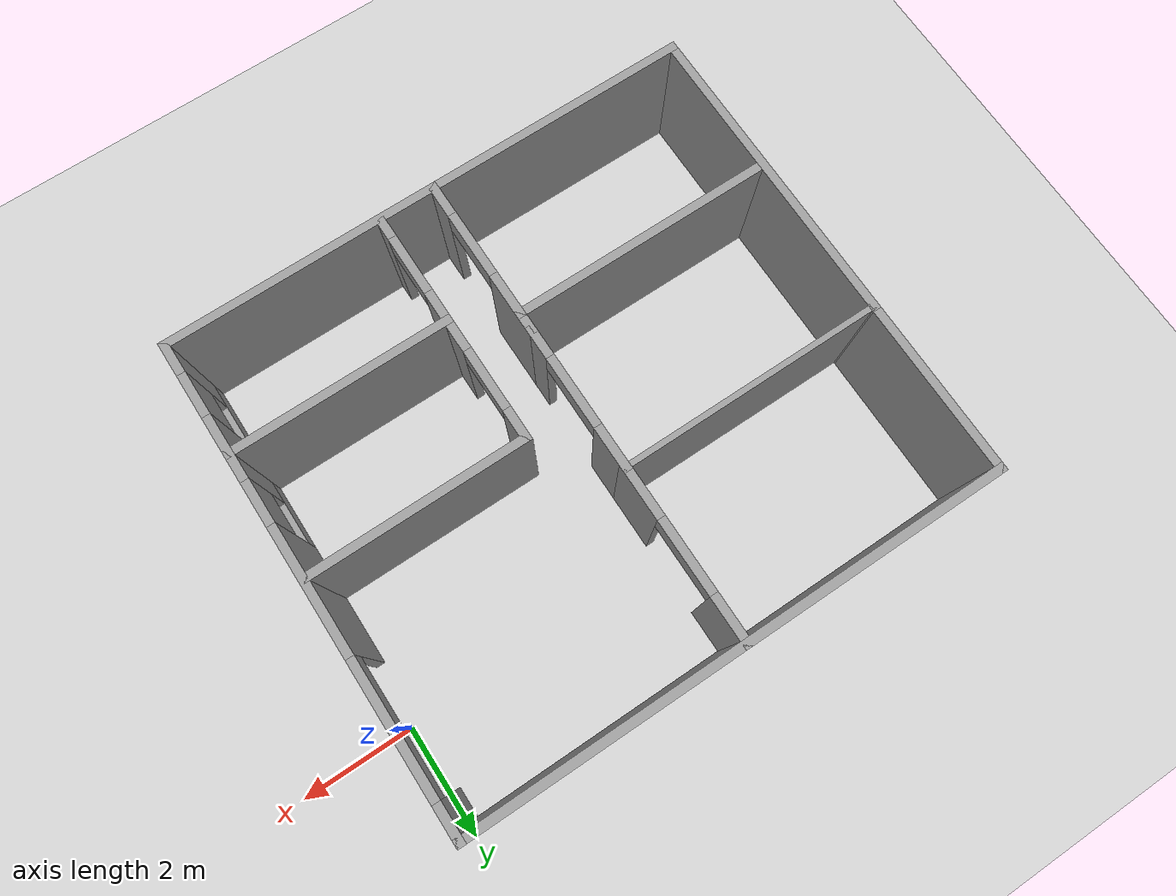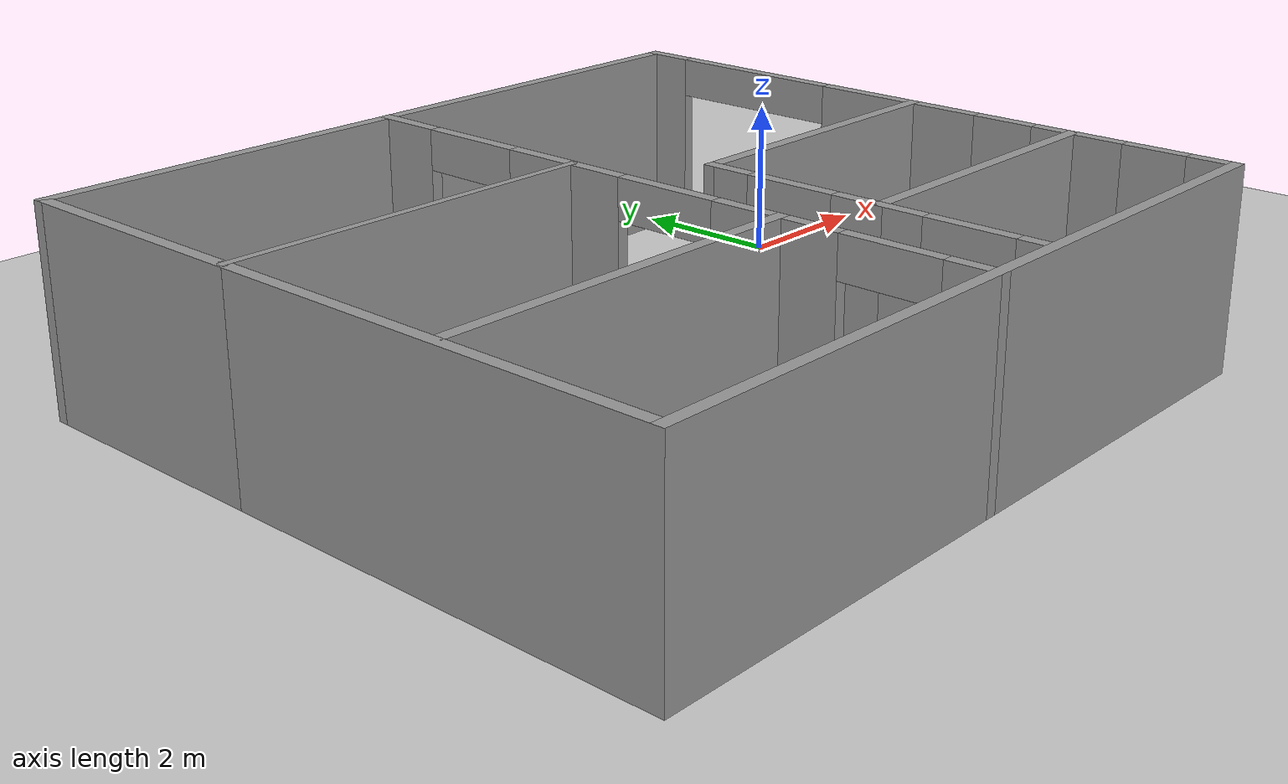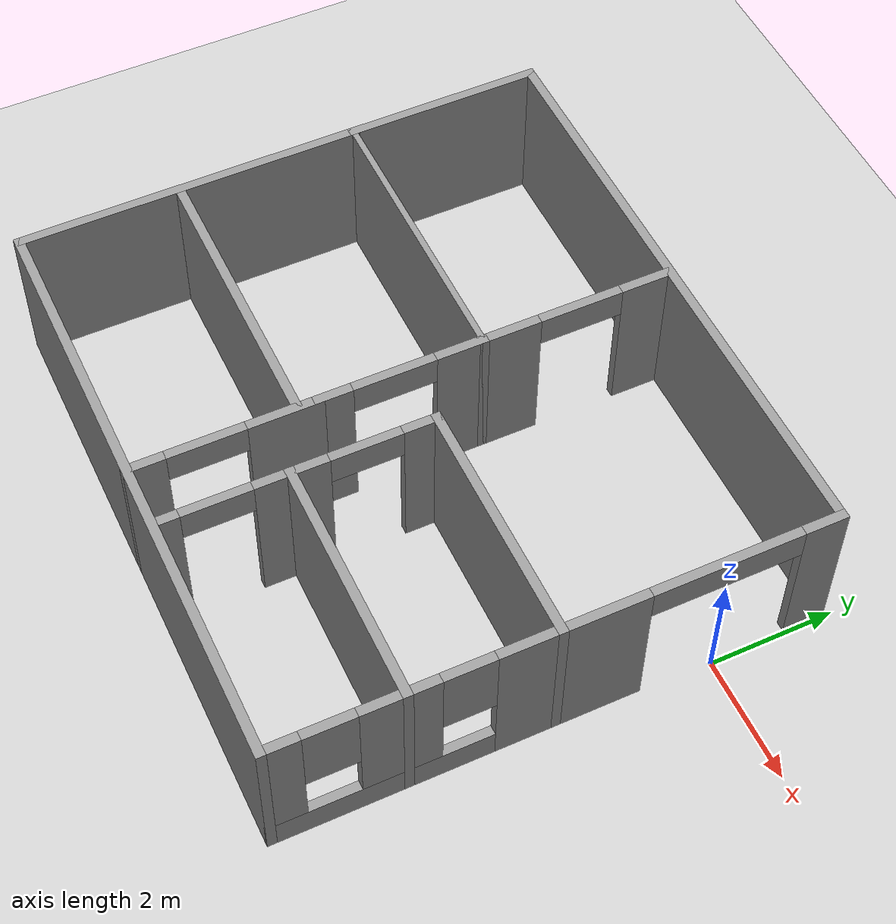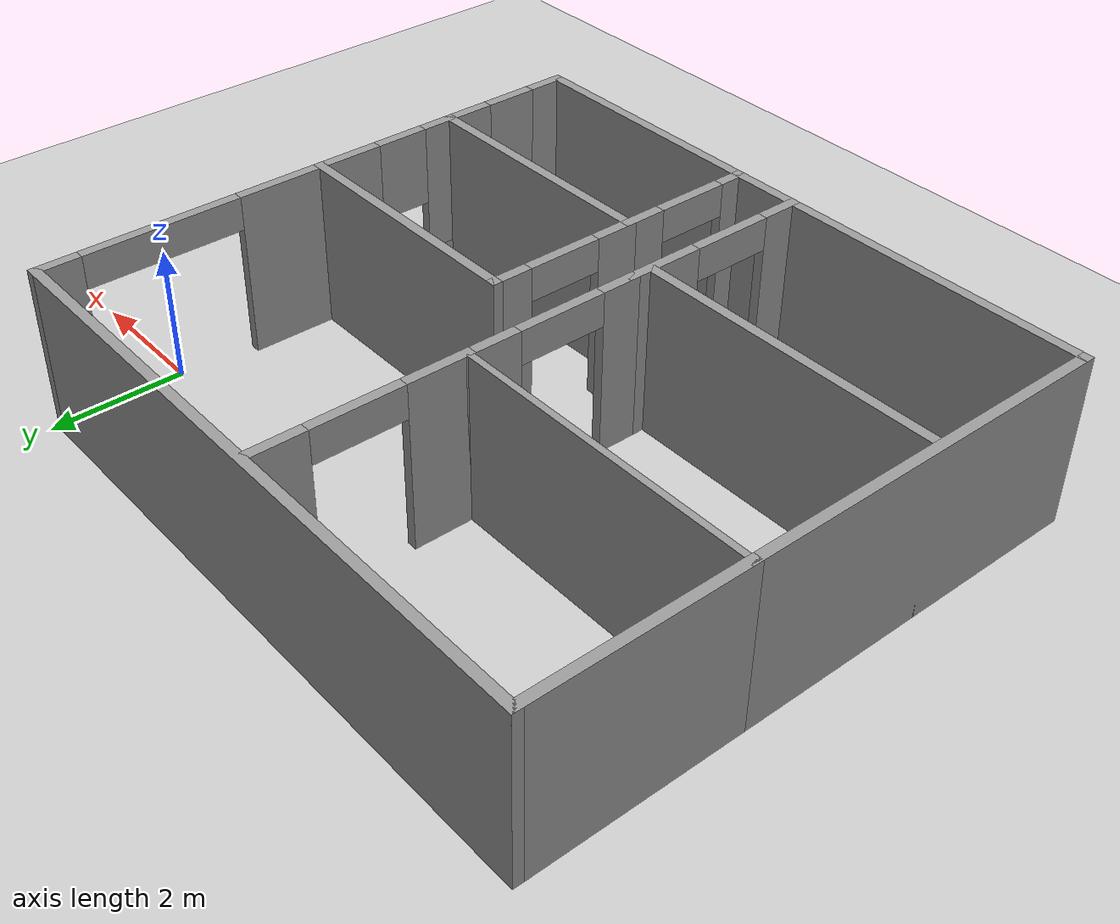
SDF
<sdf version="1.6">
 <world name="default">
  <model name="ground_plane">
   <static>1</static>
   <link name="link">
    <collision name="collision">
     <geometry><plane><normal>0 0 1</normal><size>100 100</size></plane></geometry>
     <surface>
      <contact><collide_bitmask>65535</collide_bitmask></contact>
      <friction><ode><mu>100</mu><mu2>50</mu2></ode></friction>
     </surface>
    </collision>
    <visual name="visual">
     <cast_shadows>0</cast_shadows>
     <geometry><plane><normal>0 0 1</normal><size>100 100</size></plane></geometry>
     <material>
      <script><uri>file://media/materials/scripts/gazebo.material</uri><name>Gazebo/Grey</name></script>
     </material>
    </visual>
   </link>
  </model>
  <model name="wall_real">
   <pose>-4.86138 -2.47863 0 0 -0 0</pose>
   <link name="Wall_0">
    <collision name="Wall_0_Collision">
     <geometry><box><size>3.25 0.15 2.5</size></box></geometry>
     <pose>0 0 1.25 0 -0 0</pose>
    </collision>
    <visual name="Wall_0_Visual">
     <pose>0 0 1.25 0 -0 0</pose>
     <geometry><box><size>3.25 0.15 2.5</size></box></geometry>
     <material>
      <script><uri>file://media/materials/scripts/gazebo.material</uri><name>Gazebo/Grey</name></script>
      <ambient>1 1 1 1</ambient>
     </material>
     <meta><layer>0</layer></meta>
    </visual>
    <pose>-4.75 2.75 0 0 -0 -1.5708</pose>
   </link>
   <link name="Wall_11">
    <collision name="Wall_11_Collision">
     <geometry><box><size>4 0.15 2.5</size></box></geometry>
     <pose>0 0 1.25 0 -0 0</pose>
    </collision>
    <visual name="Wall_11_Visual">
     <pose>0 0 1.25 0 -0 0</pose>
     <geometry><box><size>4 0.15 2.5</size></box></geometry>
     <material>
      <script><uri>file://media/materials/scripts/gazebo.material</uri><name>Gazebo/Grey</name></script>
      <ambient>1 1 1 1</ambient>
     </material>
     <meta><layer>0</layer></meta>
    </visual>
    <pose>2.825 -2.25 0 0 -0 3.14159</pose>
   </link>
   <link name="Wall_13">
    <pose>0.9 -1.125 0 0 -0 -1.5708</pose>
    <visual name="Wall_13_Visual_0">
     <pose>-0.890011 0 1.25 0 -0 0</pose>
     <geometry><box><size>0.619978 0.15 2.5</size></box></geometry>
     <material>
      <script><uri>file://media/materials/scripts/gazebo.material</uri><name>Gazebo/Grey</name></script>
      <ambient>1 1 1 1</ambient>
     </material>
     <meta><layer>0</layer></meta>
    </visual>
    <collision name="Wall_13_Collision_0">
     <geometry><box><size>0.619978 0.15 2.5</size></box></geometry>
     <pose>-0.890011 0 1.25 0 -0 0</pose>
    </collision>
    <visual name="Wall_13_Visual_1">
     <pose>0.873674 0 1.25 0 -0 0</pose>
     <geometry><box><size>0.652651 0.15 2.5</size></box></geometry>
     <material>
      <script><uri>file://media/materials/scripts/gazebo.material</uri><name>Gazebo/Grey</name></script>
      <ambient>1 1 1 1</ambient>
     </material>
     <meta><layer>0</layer></meta>
    </visual>
    <collision name="Wall_13_Collision_1">
     <geometry><box><size>0.652651 0.15 2.5</size></box></geometry>
     <pose>0.873674 0 1.25 0 -0 0</pose>
    </collision>
    <visual name="Wall_13_Visual_2">
     <pose>-0.016337 0 2.25 0 -0 0</pose>
     <geometry><box><size>1.12737 0.15 0.5</size></box></geometry>
     <material>
      <script><uri>file://media/materials/scripts/gazebo.material</uri><name>Gazebo/Grey</name></script>
      <ambient>1 1 1 1</ambient>
     </material>
     <meta><layer>0</layer></meta>
    </visual>
    <collision name="Wall_13_Collision_2">
     <geometry><box><size>1.12737 0.15 0.5</size></box></geometry>
     <pose>-0.016337 0 2.25 0 -0 0</pose>
    </collision>
   </link>
   <link name="Wall_14">
    <pose>0.9 -3.275 0 0 -0 -1.5708</pose>
    <visual name="Wall_14_Visual_0">
     <pose>-0.778157 0 1.25 0 -0 0</pose>
     <geometry><box><size>0.643686 0.15 2.5</size></box></geometry>
     <material>
      <script><uri>file://media/materials/scripts/gazebo.material</uri><name>Gazebo/Grey</name></script>
      <ambient>1 1 1 1</ambient>
     </material>
     <meta><layer>0</layer></meta>
    </visual>
    <collision name="Wall_14_Collision_0">
     <geometry><box><size>0.643686 0.15 2.5</size></box></geometry>
     <pose>-0.778157 0 1.25 0 -0 0</pose>
    </collision>
    <visual name="Wall_14_Visual_1">
     <pose>0.868038 0 1.25 0 -0 0</pose>
     <geometry><box><size>0.463923 0.15 2.5</size></box></geometry>
     <material>
      <script><uri>file://media/materials/scripts/gazebo.material</uri><name>Gazebo/Grey</name></script>
      <ambient>1 1 1 1</ambient>
     </material>
     <meta><layer>0</layer></meta>
    </visual>
    <collision name="Wall_14_Collision_1">
     <geometry><box><size>0.463923 0.15 2.5</size></box></geometry>
     <pose>0.868038 0 1.25 0 -0 0</pose>
    </collision>
    <visual name="Wall_14_Visual_2">
     <pose>0.089881 0 2.25 0 -0 0</pose>
     <geometry><box><size>1.09239 0.15 0.5</size></box></geometry>
     <material>
      <script><uri>file://media/materials/scripts/gazebo.material</uri><name>Gazebo/Grey</name></script>
      <ambient>1 1 1 1</ambient>
     </material>
     <meta><layer>0</layer></meta>
    </visual>
    <collision name="Wall_14_Collision_2">
     <geometry><box><size>1.09239 0.15 0.5</size></box></geometry>
     <pose>0.089881 0 2.25 0 -0 0</pose>
    </collision>
   </link>
   <link name="Wall_16">
    <pose>-0.1 -0.1 0 0 -0 -1.5708</pose>
    <visual name="Wall_16_Visual_0">
     <pose>-0.957502 0 1.25 0 -0 0</pose>
     <geometry><box><size>0.834995 0.15 2.5</size></box></geometry>
     <material>
      <script><uri>file://media/materials/scripts/gazebo.material</uri><name>Gazebo/Grey</name></script>
      <ambient>1 1 1 1</ambient>
     </material>
     <meta><layer>0</layer></meta>
    </visual>
    <collision name="Wall_16_Collision_0">
     <geometry><box><size>0.834995 0.15 2.5</size></box></geometry>
     <pose>-0.957502 0 1.25 0 -0 0</pose>
    </collision>
    <visual name="Wall_16_Visual_1">
     <pose>1.07681 0 1.25 0 -0 0</pose>
     <geometry><box><size>0.59638 0.15 2.5</size></box></geometry>
     <material>
      <script><uri>file://media/materials/scripts/gazebo.material</uri><name>Gazebo/Grey</name></script>
      <ambient>1 1 1 1</ambient>
     </material>
     <meta><layer>0</layer></meta>
    </visual>
    <collision name="Wall_16_Collision_1">
     <geometry><box><size>0.59638 0.15 2.5</size></box></geometry>
     <pose>1.07681 0 1.25 0 -0 0</pose>
    </collision>
    <visual name="Wall_16_Visual_2">
     <pose>0.119307 0 2.25 0 -0 0</pose>
     <geometry><box><size>1.31862 0.15 0.5</size></box></geometry>
     <material>
      <script><uri>file://media/materials/scripts/gazebo.material</uri><name>Gazebo/Grey</name></script>
      <ambient>1 1 1 1</ambient>
     </material>
     <meta><layer>0</layer></meta>
    </visual>
    <collision name="Wall_16_Collision_2">
     <geometry><box><size>1.31862 0.15 0.5</size></box></geometry>
     <pose>0.119307 0 2.25 0 -0 0</pose>
    </collision>
   </link>
   <link name="Wall_18">
    <pose>-0.1 -2.85 0 0 -0 -1.5708</pose>
    <visual name="Wall_18_Visual_0">
     <pose>-0.933477 0 1.25 0 -0 0</pose>
     <geometry><box><size>1.18305 0.15 2.5</size></box></geometry>
     <material>
      <script><uri>file://media/materials/scripts/gazebo.material</uri><name>Gazebo/Grey</name></script>
      <ambient>1 1 1 1</ambient>
     </material>
     <meta><layer>0</layer></meta>
    </visual>
    <collision name="Wall_18_Collision_0">
     <geometry><box><size>1.18305 0.15 2.5</size></box></geometry>
     <pose>-0.933477 0 1.25 0 -0 0</pose>
    </collision>
    <visual name="Wall_18_Visual_1">
     <pose>1.20344 0 1.25 0 -0 0</pose>
     <geometry><box><size>0.643126 0.15 2.5</size></box></geometry>
     <material>
      <script><uri>file://media/materials/scripts/gazebo.material</uri><name>Gazebo/Grey</name></script>
      <ambient>1 1 1 1</ambient>
     </material>
     <meta><layer>0</layer></meta>
    </visual>
    <collision name="Wall_18_Collision_1">
     <geometry><box><size>0.643126 0.15 2.5</size></box></geometry>
     <pose>1.20344 0 1.25 0 -0 0</pose>
    </collision>
    <visual name="Wall_18_Visual_2">
     <pose>0.26996 0 2.25 0 -0 0</pose>
     <geometry><box><size>1.22383 0.15 0.5</size></box></geometry>
     <material>
      <script><uri>file://media/materials/scripts/gazebo.material</uri><name>Gazebo/Grey</name></script>
      <ambient>1 1 1 1</ambient>
     </material>
     <meta><layer>0</layer></meta>
    </visual>
    <collision name="Wall_18_Collision_2">
     <geometry><box><size>1.22383 0.15 0.5</size></box></geometry>
     <pose>0.26996 0 2.25 0 -0 0</pose>
    </collision>
   </link>
   <link name="Wall_2">
    <collision name="Wall_2_Collision">
     <geometry><box><size>5.65 0.15 2.5</size></box></geometry>
     <pose>0 0 1.25 0 -0 0</pose>
    </collision>
    <visual name="Wall_2_Visual">
     <pose>0 0 1.25 0 -0 0</pose>
     <geometry><box><size>5.65 0.15 2.5</size></box></geometry>
     <material>
      <script><uri>file://media/materials/scripts/gazebo.material</uri><name>Gazebo/Grey</name></script>
      <ambient>1 1 1 1</ambient>
     </material>
     <meta><layer>0</layer></meta>
    </visual>
    <pose>-4.75 -1.55 0 0 -0 -1.5708</pose>
   </link>
   <link name="Wall_20">
    <collision name="Wall_20_Collision">
     <geometry><box><size>4.8 0.15 2.5</size></box></geometry>
     <pose>0 0 1.25 0 -0 0</pose>
    </collision>
    <visual name="Wall_20_Visual">
     <pose>0 0 1.25 0 -0 0</pose>
     <geometry><box><size>4.8 0.15 2.5</size></box></geometry>
     <material>
      <script><uri>file://media/materials/scripts/gazebo.material</uri><name>Gazebo/Grey</name></script>
      <ambient>1 1 1 1</ambient>
     </material>
     <meta><layer>0</layer></meta>
    </visual>
    <pose>-2.425 -1.72408 0 0 -0 3.14159</pose>
   </link>
   <link name="Wall_22">
    <pose>-0.1 2.75 0 0 -0 1.5708</pose>
    <visual name="Wall_22_Visual_0">
     <pose>-1.12521 0 1.25 0 -0 0</pose>
     <geometry><box><size>0.999582 0.15 2.5</size></box></geometry>
     <material>
      <script><uri>file://media/materials/scripts/gazebo.material</uri><name>Gazebo/Grey</name></script>
      <ambient>1 1 1 1</ambient>
     </material>
     <meta><layer>0</layer></meta>
    </visual>
    <collision name="Wall_22_Collision_0">
     <geometry><box><size>0.999582 0.15 2.5</size></box></geometry>
     <pose>-1.12521 0 1.25 0 -0 0</pose>
    </collision>
    <visual name="Wall_22_Visual_1">
     <pose>1.16953 0 1.25 0 -0 0</pose>
     <geometry><box><size>0.910936 0.15 2.5</size></box></geometry>
     <material>
      <script><uri>file://media/materials/scripts/gazebo.material</uri><name>Gazebo/Grey</name></script>
      <ambient>1 1 1 1</ambient>
     </material>
     <meta><layer>0</layer></meta>
    </visual>
    <collision name="Wall_22_Collision_1">
     <geometry><box><size>0.910936 0.15 2.5</size></box></geometry>
     <pose>1.16953 0 1.25 0 -0 0</pose>
    </collision>
    <visual name="Wall_22_Visual_2">
     <pose>0.044323 0 2.25 0 -0 0</pose>
     <geometry><box><size>1.33948 0.15 0.5</size></box></geometry>
     <material>
      <script><uri>file://media/materials/scripts/gazebo.material</uri><name>Gazebo/Grey</name></script>
      <ambient>1 1 1 1</ambient>
     </material>
     <meta><layer>0</layer></meta>
    </visual>
    <collision name="Wall_22_Collision_2">
     <geometry><box><size>1.33948 0.15 0.5</size></box></geometry>
     <pose>0.044323 0 2.25 0 -0 0</pose>
    </collision>
   </link>
   <link name="Wall_24">
    <collision name="Wall_24_Collision">
     <geometry><box><size>9.65 0.15 2.5</size></box></geometry>
     <pose>0 0 1.25 0 -0 0</pose>
    </collision>
    <visual name="Wall_24_Visual">
     <pose>0 0 1.25 0 -0 0</pose>
     <geometry><box><size>9.65 0.15 2.5</size></box></geometry>
     <material>
      <script><uri>file://media/materials/scripts/gazebo.material</uri><name>Gazebo/Grey</name></script>
      <ambient>1 1 1 1</ambient>
     </material>
     <meta><layer>0</layer></meta>
    </visual>
    <pose>-0 4.3 0 0 -0 0</pose>
   </link>
   <link name="Wall_26">
    <collision name="Wall_26_Collision">
     <geometry><box><size>9.65 0.15 2.5</size></box></geometry>
     <pose>0 0 1.25 0 -0 0</pose>
    </collision>
    <visual name="Wall_26_Visual">
     <pose>0 0 1.25 0 -0 0</pose>
     <geometry><box><size>9.65 0.15 2.5</size></box></geometry>
     <material>
      <script><uri>file://media/materials/scripts/gazebo.material</uri><name>Gazebo/Grey</name></script>
      <ambient>1 1 1 1</ambient>
     </material>
     <meta><layer>0</layer></meta>
    </visual>
    <pose>-0 -4.3 0 0 -0 0</pose>
   </link>
   <link name="Wall_4">
    <collision name="Wall_4_Collision">
     <geometry><box><size>4.75 0.1 2.5</size></box></geometry>
     <pose>0 0 1.25 0 -0 0</pose>
    </collision>
    <visual name="Wall_4_Visual">
     <pose>0 0 1.25 0 -0 0</pose>
     <geometry><box><size>4.75 0.1 2.5</size></box></geometry>
     <material>
      <script><uri>file://media/materials/scripts/gazebo.material</uri><name>Gazebo/Grey</name></script>
      <ambient>1 1 1 1</ambient>
     </material>
     <meta><layer>0</layer></meta>
    </visual>
    <pose>-2.425 1.2 0 0 -0 0</pose>
   </link>
   <link name="Wall_6">
    <pose>4.75 -0 0 0 -0 -1.5708</pose>
    <visual name="Wall_6_Visual_0">
     <pose>-4.03377 0 1.25 0 -0 0</pose>
     <geometry><box><size>0.682464 0.15 2.5</size></box></geometry>
     <material>
      <script><uri>file://media/materials/scripts/gazebo.material</uri><name>Gazebo/Grey</name></script>
      <ambient>1 1 1 1</ambient>
     </material>
     <meta><layer>0</layer></meta>
    </visual>
    <collision name="Wall_6_Collision_0">
     <geometry><box><size>0.682464 0.15 2.5</size></box></geometry>
     <pose>-4.03377 0 1.25 0 -0 0</pose>
    </collision>
    <visual name="Wall_6_Visual_1">
     <pose>-0.194728 0 1.25 0 -0 0</pose>
     <geometry><box><size>2.29234 0.15 2.5</size></box></geometry>
     <material>
      <script><uri>file://media/materials/scripts/gazebo.material</uri><name>Gazebo/Grey</name></script>
      <ambient>1 1 1 1</ambient>
     </material>
     <meta><layer>0</layer></meta>
    </visual>
    <collision name="Wall_6_Collision_1">
     <geometry><box><size>2.29234 0.15 2.5</size></box></geometry>
     <pose>-0.194728 0 1.25 0 -0 0</pose>
    </collision>
    <visual name="Wall_6_Visual_2">
     <pose>2.66322 0 0.25 0 -0 0</pose>
     <geometry><box><size>3.42356 0.15 0.5</size></box></geometry>
     <material>
      <script><uri>file://media/materials/scripts/gazebo.material</uri><name>Gazebo/Grey</name></script>
      <ambient>1 1 1 1</ambient>
     </material>
     <meta><layer>0</layer></meta>
    </visual>
    <collision name="Wall_6_Collision_2">
     <geometry><box><size>3.42356 0.15 0.5</size></box></geometry>
     <pose>2.66322 0 0.25 0 -0 0</pose>
    </collision>
    <visual name="Wall_6_Visual_3">
     <pose>2.34857 0 1.5 0 -0 0</pose>
     <geometry><box><size>1.19426 0.15 2</size></box></geometry>
     <material>
      <script><uri>file://media/materials/scripts/gazebo.material</uri><name>Gazebo/Grey</name></script>
      <ambient>1 1 1 1</ambient>
     </material>
     <meta><layer>0</layer></meta>
    </visual>
    <collision name="Wall_6_Collision_3">
     <geometry><box><size>1.19426 0.15 2</size></box></geometry>
     <pose>2.34857 0 1.5 0 -0 0</pose>
    </collision>
    <visual name="Wall_6_Visual_4">
     <pose>4.06035 0 1.5 0 -0 0</pose>
     <geometry><box><size>0.629299 0.15 2</size></box></geometry>
     <material>
      <script><uri>file://media/materials/scripts/gazebo.material</uri><name>Gazebo/Grey</name></script>
      <ambient>1 1 1 1</ambient>
     </material>
     <meta><layer>0</layer></meta>
    </visual>
    <collision name="Wall_6_Collision_4">
     <geometry><box><size>0.629299 0.15 2</size></box></geometry>
     <pose>4.06035 0 1.5 0 -0 0</pose>
    </collision>
    <visual name="Wall_6_Visual_5">
     <pose>1.35144 0 1.9 0 -0 0</pose>
     <geometry><box><size>0.8 0.15 1.2</size></box></geometry>
     <material>
      <script><uri>file://media/materials/scripts/gazebo.material</uri><name>Gazebo/Grey</name></script>
      <ambient>1 1 1 1</ambient>
     </material>
     <meta><layer>0</layer></meta>
    </visual>
    <collision name="Wall_6_Collision_5">
     <geometry><box><size>0.8 0.15 1.2</size></box></geometry>
     <pose>1.35144 0 1.9 0 -0 0</pose>
    </collision>
    <visual name="Wall_6_Visual_6">
     <pose>3.3457 0 1.9 0 -0 0</pose>
     <geometry><box><size>0.8 0.15 1.2</size></box></geometry>
     <material>
      <script><uri>file://media/materials/scripts/gazebo.material</uri><name>Gazebo/Grey</name></script>
      <ambient>1 1 1 1</ambient>
     </material>
     <meta><layer>0</layer></meta>
    </visual>
    <collision name="Wall_6_Collision_6">
     <geometry><box><size>0.8 0.15 1.2</size></box></geometry>
     <pose>3.3457 0 1.9 0 -0 0</pose>
    </collision>
    <visual name="Wall_6_Visual_7">
     <pose>-2.51672 0 2.25 0 -0 0</pose>
     <geometry><box><size>2.35164 0.15 0.5</size></box></geometry>
     <material>
      <script><uri>file://media/materials/scripts/gazebo.material</uri><name>Gazebo/Grey</name></script>
      <ambient>1 1 1 1</ambient>
     </material>
     <meta><layer>0</layer></meta>
    </visual>
    <collision name="Wall_6_Collision_7">
     <geometry><box><size>2.35164 0.15 0.5</size></box></geometry>
     <pose>-2.51672 0 2.25 0 -0 0</pose>
    </collision>
   </link>
   <link name="Wall_8">
    <collision name="Wall_8_Collision">
     <geometry><box><size>4 0.15 2.5</size></box></geometry>
     <pose>0 0 1.25 0 -0 0</pose>
    </collision>
    <visual name="Wall_8_Visual">
     <pose>0 0 1.25 0 -0 0</pose>
     <geometry><box><size>4 0.15 2.5</size></box></geometry>
     <material>
      <script><uri>file://media/materials/scripts/gazebo.material</uri><name>Gazebo/Grey</name></script>
      <ambient>1 1 1 1</ambient>
     </material>
     <meta><layer>0</layer></meta>
    </visual>
    <pose>2.825 -0 0 0 -0 3.14159</pose>
   </link>
   <static>1</static>
  </model>
 </world>
</sdf>
